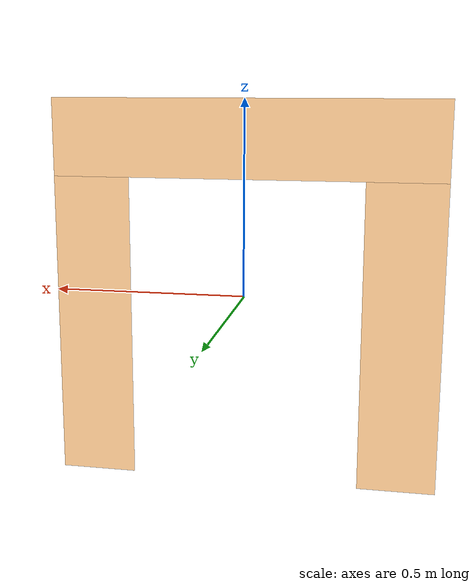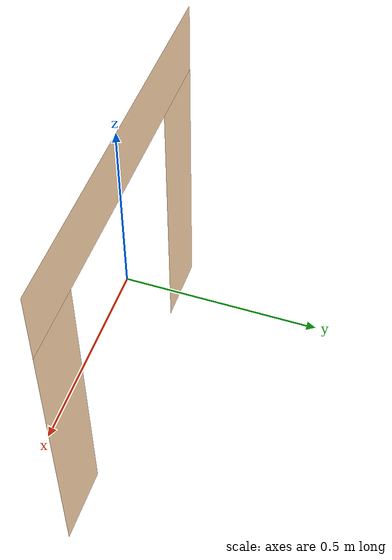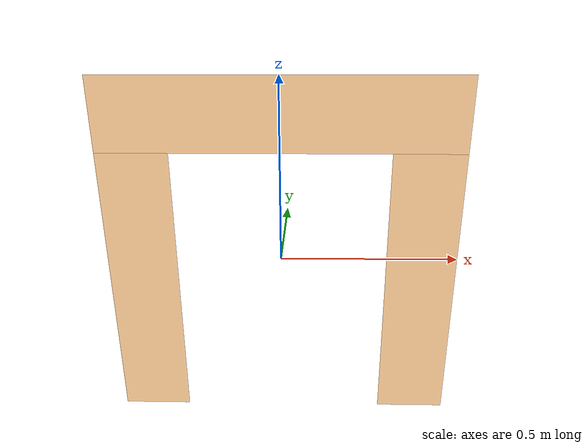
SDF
<?xml version='1.0'?>
<sdf version='1.6'>
  <model name='gate'>
    <link name='link_0'>
      <pose frame=''>0 0 0 0 -0 0</pose>
      <inertial>
        <mass>1</mass>
        <inertia>
          <ixx>0.166667</ixx>
          <ixy>0</ixy>
          <ixz>0</ixz>
          <iyy>0.166667</iyy>
          <iyz>0</iyz>
          <izz>0.166667</izz>
        </inertia>
        <pose frame=''>0 0 0 0 -0 0</pose>
      </inertial>
      <gravity>0</gravity>
      <self_collide>0</self_collide>
      <kinematic>1</kinematic>
      <visual name='ModelPreview_0::link_0::visual_3'>
        <pose frame=''>-0.4 0 -0.1 0 -0 0</pose>
        <geometry>
          <box>
            <size>0.2 1e-06 0.8</size>
          </box>
        </geometry>
        <material>
          <script>
            <uri>file://media/materials/scripts/gazebo.material</uri>
            <name>Gazebo/DarkOrangeTransparentOverlay</name>
          </script>
        </material>
        <cast_shadows>1</cast_shadows>
        <transparency>0</transparency>
      </visual>
      <visual name='ModelPreview_0::link_0::visual_4'>
        <pose frame=''>0.4 0 -0.1 0 -0 0</pose>
        <geometry>
          <box>
            <size>0.2 1e-06 0.8</size>
          </box>
        </geometry>
        <material>
          <script>
            <uri>file://media/materials/scripts/gazebo.material</uri>
            <name>Gazebo/DarkOrangeTransparentOverlay</name>
          </script>
        </material>
        <cast_shadows>1</cast_shadows>
        <transparency>0</transparency>
      </visual>
      <visual name='visual'>
        <pose frame=''>0 0 0.4 0 -0 0</pose>
        <geometry>
          <box>
            <size>1 1e-06 0.2</size>
          </box>
        </geometry>
        <material>
          <script>
            <uri>file://media/materials/scripts/gazebo.material</uri>
            <name>Gazebo/DarkOrangeTransparentOverlay</name>
          </script>
        </material>
        <cast_shadows>1</cast_shadows>
        <transparency>0</transparency>
      </visual>
      <collision name='collision_1'>
        <laser_retro>0</laser_retro>
        <max_contacts>10</max_contacts>
        <pose frame=''>-0.4 0 -0.1 0 -0 0</pose>
        <geometry>
          <box>
            <size>0.2 1e-06 0.8</size>
          </box>
        </geometry>
        <surface>
          <friction>
            <ode>
              <mu>1</mu>
              <mu2>1</mu2>
              <fdir1>0 0 0</fdir1>
              <slip1>0</slip1>
              <slip2>0</slip2>
            </ode>
            <torsional>
              <coefficient>1</coefficient>
              <patch_radius>0</patch_radius>
              <surface_radius>0</surface_radius>
              <use_patch_radius>1</use_patch_radius>
              <ode>
                <slip>0</slip>
              </ode>
            </torsional>
          </friction>
          <bounce>
            <restitution_coefficient>0</restitution_coefficient>
            <threshold>1e+06</threshold>
          </bounce>
          <contact>
            <collide_without_contact>0</collide_without_contact>
            <collide_without_contact_bitmask>1</collide_without_contact_bitmask>
            <collide_bitmask>1</collide_bitmask>
            <ode>
              <soft_cfm>0</soft_cfm>
              <soft_erp>0.2</soft_erp>
              <kp>1e+13</kp>
              <kd>1</kd>
              <max_vel>0.01</max_vel>
              <min_depth>0</min_depth>
            </ode>
            <bullet>
              <split_impulse>1</split_impulse>
              <split_impulse_penetration_threshold>-0.01</split_impulse_penetration_threshold>
              <soft_cfm>0</soft_cfm>
              <soft_erp>0.2</soft_erp>
              <kp>1e+13</kp>
              <kd>1</kd>
            </bullet>
          </contact>
        </surface>
      </collision>
      <collision name='collision'>
        <laser_retro>0</laser_retro>
        <max_contacts>10</max_contacts>
        <pose frame=''>0 0 0.4 0 -0 0</pose>
        <geometry>
          <box>
            <size>1 1e-06 0.2</size>
          </box>
        </geometry>
        <surface>
          <friction>
            <ode>
              <mu>1</mu>
              <mu2>1</mu2>
              <fdir1>0 0 0</fdir1>
              <slip1>0</slip1>
              <slip2>0</slip2>
            </ode>
            <torsional>
              <coefficient>1</coefficient>
              <patch_radius>0</patch_radius>
              <surface_radius>0</surface_radius>
              <use_patch_radius>1</use_patch_radius>
              <ode>
                <slip>0</slip>
              </ode>
            </torsional>
          </friction>
          <bounce>
            <restitution_coefficient>0</restitution_coefficient>
            <threshold>1e+06</threshold>
          </bounce>
          <contact>
            <collide_without_contact>0</collide_without_contact>
            <collide_without_contact_bitmask>1</collide_without_contact_bitmask>
            <collide_bitmask>1</collide_bitmask>
            <ode>
              <soft_cfm>0</soft_cfm>
              <soft_erp>0.2</soft_erp>
              <kp>1e+13</kp>
              <kd>1</kd>
              <max_vel>0.01</max_vel>
              <min_depth>0</min_depth>
            </ode>
            <bullet>
              <split_impulse>1</split_impulse>
              <split_impulse_penetration_threshold>-0.01</split_impulse_penetration_threshold>
              <soft_cfm>0</soft_cfm>
              <soft_erp>0.2</soft_erp>
              <kp>1e+13</kp>
              <kd>1</kd>
            </bullet>
          </contact>
        </surface>
      </collision>
      <collision name='collision_2'>
        <laser_retro>0</laser_retro>
        <max_contacts>10</max_contacts>
        <pose frame=''>0.4 0 -0.1 0 -0 0</pose>
        <geometry>
          <box>
            <size>0.2 1e-06 0.8</size>
          </box>
        </geometry>
        <surface>
          <friction>
            <ode>
              <mu>1</mu>
              <mu2>1</mu2>
              <fdir1>0 0 0</fdir1>
              <slip1>0</slip1>
              <slip2>0</slip2>
            </ode>
            <torsional>
              <coefficient>1</coefficient>
              <patch_radius>0</patch_radius>
              <surface_radius>0</surface_radius>
              <use_patch_radius>1</use_patch_radius>
              <ode>
                <slip>0</slip>
              </ode>
            </torsional>
          </friction>
          <bounce>
            <restitution_coefficient>0</restitution_coefficient>
            <threshold>1e+06</threshold>
          </bounce>
          <contact>
            <collide_without_contact>0</collide_without_contact>
            <collide_without_contact_bitmask>1</collide_without_contact_bitmask>
            <collide_bitmask>1</collide_bitmask>
            <ode>
              <soft_cfm>0</soft_cfm>
              <soft_erp>0.2</soft_erp>
              <kp>1e+13</kp>
              <kd>1</kd>
              <max_vel>0.01</max_vel>
              <min_depth>0</min_depth>
            </ode>
            <bullet>
              <split_impulse>1</split_impulse>
              <split_impulse_penetration_threshold>-0.01</split_impulse_penetration_threshold>
              <soft_cfm>0</soft_cfm>
              <soft_erp>0.2</soft_erp>
              <kp>1e+13</kp>
              <kd>1</kd>
            </bullet>
          </contact>
        </surface>
      </collision>
    </link>
    <static>0</static>
    <allow_auto_disable>1</allow_auto_disable>
  </model>
</sdf>
